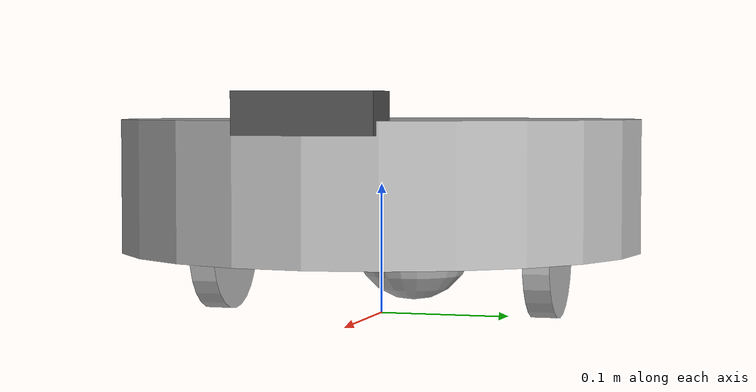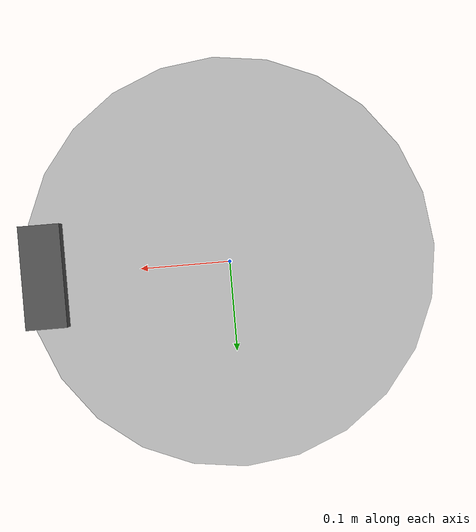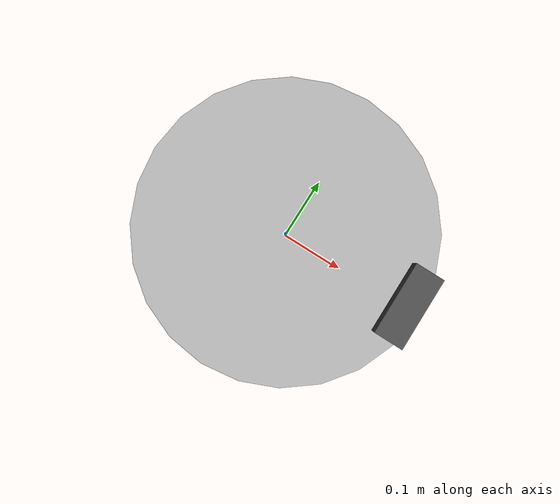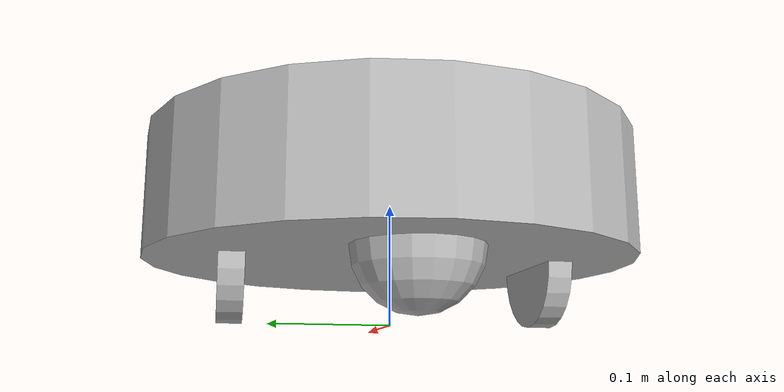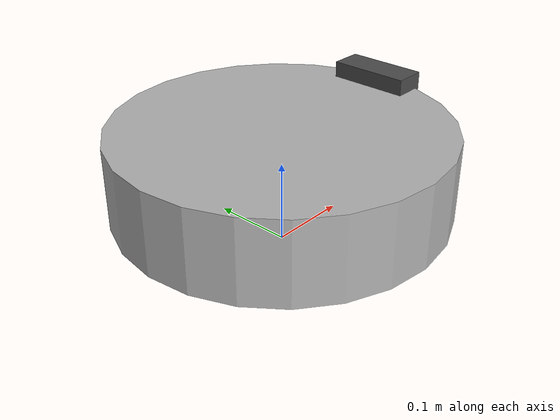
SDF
<?xml version="1.0"?>
<sdf version="1.7">
  <model name="robot_cameron">

    <!-- Base link (chassis) -->
    <link name="chassis">
      <pose>0 0 0.1 0 0 0</pose>
      <inertial>
        <mass>14.7655</mass>
        <inertia>
          <ixx>0.159959</ixx>
          <ixy>0</ixy>
          <ixz>0</ixz>
          <iyy>0.159959</iyy>
          <iyz>0</iyz>
          <izz>0.29531</izz>
        </inertia>
      </inertial>
      <collision name="chassis_collision">
        <geometry>
          <cylinder>
            <radius>0.2</radius>
            <length>0.1</length>
          </cylinder>
        </geometry>
        <surface>
          <friction>
            <ode>
              <mu>1</mu>
              <mu2>1</mu2>
            </ode>
          </friction>
        </surface>
      </collision>
      <visual name="chassis_visual">
        <geometry>
          <cylinder>
            <radius>0.2</radius>
            <length>0.1</length>
          </cylinder>
        </geometry>
        <material>
          <ambient>0.3 0.3 0.3 1.0</ambient>
          <diffuse>0.7 0.7 0.7 1.0</diffuse>
          <specular>0.01 0.01 0.01 1.0</specular>
        </material>
      </visual>
    </link>

    <!-- Left wheel -->
    <link name="left_wheel">
      <pose>0 0.13 0.05 1.5707 0 0</pose>
      <inertial>
        <mass>0.184569</mass>
        <inertia>
          <ixx>0.00012151</ixx>
          <ixy>0</ixy>
          <ixz>0</ixz>
          <iyy>0.00012151</iyy>
          <iyz>0</iyz>
          <izz>0.00023071</izz>
        </inertia>
      </inertial>
      <collision name="left_wheel_collision">
        <geometry>
          <cylinder>
            <radius>0.05</radius>
            <length>0.02</length>
          </cylinder>
        </geometry>
        <surface>
          <friction>
            <ode>
              <mu>1</mu>
              <mu2>1</mu2>
            </ode>
          </friction>
        </surface>
      </collision>
      <visual name="left_wheel_visual">
        <geometry>
          <cylinder>
            <radius>0.05</radius>
            <length>0.02</length>
          </cylinder>
        </geometry>
        <material>
          <ambient>0.3 0.3 0.3 1.0</ambient>
          <diffuse>0.7 0.7 0.7 1.0</diffuse>
          <specular>0.01 0.01 0.01 1.0</specular>
        </material>
      </visual>
    </link>

    <!-- Right wheel -->
    <link name="right_wheel">
      <pose>0 -0.13 0.05 1.5707 0 0</pose>
      <inertial>
        <mass>0.184569</mass>
        <inertia>
          <ixx>0.00012151</ixx>
          <ixy>0</ixy>
          <ixz>0</ixz>
          <iyy>0.00012151</iyy>
          <iyz>0</iyz>
          <izz>0.00023071</izz>
        </inertia>
      </inertial>
      <collision name="right_wheel_collision">
        <geometry>
          <cylinder>
            <radius>0.05</radius>
            <length>0.02</length>
          </cylinder>
        </geometry>
        <surface>
          <friction>
            <ode>
              <mu>1</mu>
              <mu2>1</mu2>
            </ode>
          </friction>
        </surface>
      </collision>
      <visual name="right_wheel_visual">
        <geometry>
          <cylinder>
            <radius>0.05</radius>
            <length>0.02</length>
          </cylinder>
        </geometry>
        <material>
          <ambient>0.3 0.3 0.3 1.0</ambient>
          <diffuse>0.7 0.7 0.7 1.0</diffuse>
          <specular>0.01 0.01 0.01 1.0</specular>
        </material>
      </visual>
    </link>

    <!-- Caster ball (front) -->
    <link name="caster_ball">
      <pose>-0.1 0 0.05 0 0 0</pose>
      <inertial>
        <mass>5</mass>
        <inertia>
          <ixx>0.00061523</ixx>
          <ixy>0</ixy>
          <ixz>0</ixz>
          <iyy>0.00061523</iyy>
          <iyz>0</iyz>
          <izz>0.00061523</izz>
        </inertia>
      </inertial>
      <collision name="caster_ball_collision">
        <geometry>
          <sphere>
            <radius>0.05</radius>
          </sphere>
        </geometry>
        <surface>
          <friction>
            <ode>
              <mu>1</mu>
              <mu2>1</mu2>
            </ode>
          </friction>
        </surface>
      </collision>
      <visual name="caster_ball_visual">
        <geometry>
          <sphere>
            <radius>0.05</radius>
          </sphere>
        </geometry>
        <material>
          <ambient>0.3 0.3 0.3 1.0</ambient>
          <diffuse>0.7 0.7 0.7 1.0</diffuse>
          <specular>0.01 0.01 0.01 1.0</specular>
        </material>
      </visual>
    </link>

    <!-- Joint: chassis to left wheel -->
    <joint name="left_wheel_joint" type="revolute">
      <parent>chassis</parent>
      <child>left_wheel</child>
      <pose>0 0 0 0 0 0</pose>
      <axis>
        <xyz>0 0 -1</xyz>
        <limit>
          <lower>-1e16</lower>
          <upper>1e16</upper>
        </limit>
      </axis>
    </joint>

    <!-- Joint: chassis to right wheel -->
    <joint name="right_wheel_joint" type="revolute">
      <parent>chassis</parent>
      <child>right_wheel</child>
      <pose>0 0 0 0 0 0</pose>
      <axis>
        <xyz>0 0 -1</xyz>
        <limit>
          <lower>-1e16</lower>
          <upper>1e16</upper>
        </limit>
      </axis>
    </joint>

    <!-- Joint: chassis to caster ball (ball joint) -->
    <joint name="ball_wheel_joint" type="ball">
      <parent>chassis</parent>
      <child>caster_ball</child>
      <pose>0 0 0 0 0 0</pose>
    </joint>

    <!-- Stereo Camera Mount -->
    <link name="stereo_camera_mount">
      <pose>0.18 0 0.155 0 0 1.5708</pose>
      <inertial>
        <mass>0.1</mass>
        <inertia>
          <ixx>0.0001</ixx>
          <ixy>0</ixy>
          <ixz>0</ixz>
          <iyy>0.0001</iyy>
          <iyz>0</iyz>
          <izz>0.0001</izz>
        </inertia>
      </inertial>
      <collision name="mount_collision">
        <geometry>
          <box>
            <size>0.1 0.04 0.03</size>
          </box>
        </geometry>
      </collision>
      <visual name="mount_visual">
        <geometry>
          <box>
            <size>0.1 0.04 0.03</size>
          </box>
        </geometry>
        <material>
          <ambient>0.2 0.2 0.2 1.0</ambient>
          <diffuse>0.3 0.3 0.3 1.0</diffuse>
          <specular>0.3 0.3 0.3 1.0</specular>
        </material>
      </visual>
    </link>

    <!-- Left Camera -->
    <link name="left_camera">
      <pose>0.2 0.05 0.155 0 0 0</pose>
      <inertial>
        <mass>0.05</mass>
        <inertia>
          <ixx>0.00001</ixx>
          <ixy>0</ixy>
          <ixz>0</ixz>
          <iyy>0.00001</iyy>
          <iyz>0</iyz>
          <izz>0.00001</izz>
        </inertia>
      </inertial>
      <sensor name="left_camera_sensor" type="camera">
        <pose>0 0 0 0 0 0</pose>
        <camera>
          <horizontal_fov>1.0472</horizontal_fov>
          <image>
            <width>640</width>
            <height>480</height>
            <format>R8G8B8</format>
          </image>
          <clip>
            <near>0.1</near>
            <far>100</far>
          </clip>
          <noise>
            <type>gaussian</type>
            <mean>0.0</mean>
            <stddev>0.007</stddev>
          </noise>
        </camera>
        <always_on>true</always_on>
        <update_rate>30</update_rate>
        <visualize>false</visualize>
        <plugin name="left_camera_plugin" filename="libgazebo_ros_camera.so">
          <alwaysOn>true</alwaysOn>
          <cameraName>left_camera</cameraName>
          <imageTopicName>left_cam_image</imageTopicName>
          <cameraInfoTopicName>left_cam_info</cameraInfoTopicName>
          <frameName>left_cam_link</frameName>
          <distortionK1>0.0</distortionK1>
          <distortionK2>0.0</distortionK2>
          <distortionK3>0.0</distortionK3>
          <distortionT1>0.0</distortionT1>
          <distortionT2>0.0</distortionT2>
        </plugin>
      </sensor>
    </link>

    <!-- Right Camera -->
    <link name="right_camera">
      <pose>0.2 -0.05 0.155 0 0 0</pose>
      <inertial>
        <mass>0.05</mass>
        <inertia>
          <ixx>0.00001</ixx>
          <ixy>0</ixy>
          <ixz>0</ixz>
          <iyy>0.00001</iyy>
          <iyz>0</iyz>
          <izz>0.00001</izz>
        </inertia>
      </inertial>
      <sensor name="right_camera_sensor" type="camera">
        <pose>0 0 0 0 0 0</pose>
        <camera>
          <horizontal_fov>1.0472</horizontal_fov>
          <image>
            <width>640</width>
            <height>480</height>
            <format>R8G8B8</format>
          </image>
          <clip>
            <near>0.1</near>
            <far>100</far>
          </clip>
          <noise>
            <type>gaussian</type>
            <mean>0.0</mean>
            <stddev>0.007</stddev>
          </noise>
        </camera>
        <always_on>true</always_on>
        <update_rate>30</update_rate>
        <visualize>false</visualize>
        <plugin name="right_camera_plugin" filename="libgazebo_ros_camera.so">
          <alwaysOn>true</alwaysOn>
          <updateRate>0.0</updateRate>
          <cameraName>right_camera</cameraName>
          <imageTopicName>right_cam_image</imageTopicName>
          <cameraInfoTopicName>right_cam_info</cameraInfoTopicName>
          <frameName>right_cam_link</frameName>
          <distortionK1>0.0</distortionK1>
          <distortionK2>0.0</distortionK2>
          <distortionK3>0.0</distortionK3>
          <distortionT1>0.0</distortionT1>
          <distortionT2>0.0</distortionT2>
        </plugin>
      </sensor>
    </link>

    <!-- Joint: mount to chassis -->
    <joint name="mount_to_chassis" type="fixed">
      <parent>chassis</parent>
      <child>stereo_camera_mount</child>
      <pose>0.18 0 0.25 1.5708 0 0</pose>
    </joint>

    <!-- Joint: left camera to mount -->
    <joint name="left_camera_to_mount" type="fixed">
      <parent>stereo_camera_mount</parent>
      <child>left_camera</child>
      <pose>0.05 0.05 0 0 0 0</pose>
    </joint>

    <!-- Joint: right camera to mount -->
    <joint name="right_camera_to_mount" type="fixed">
      <parent>stereo_camera_mount</parent>
      <child>right_camera</child>
      <pose>0.05 -0.05 0 0 0 0</pose>
    </joint>

    <plugin name="wheel_robot_controller" filename="/home/michail/BIIS/navigation_ws/install/test_robot_plugin/lib/libwheel_robot_controller.so">
    </plugin>

  </model>
</sdf>
